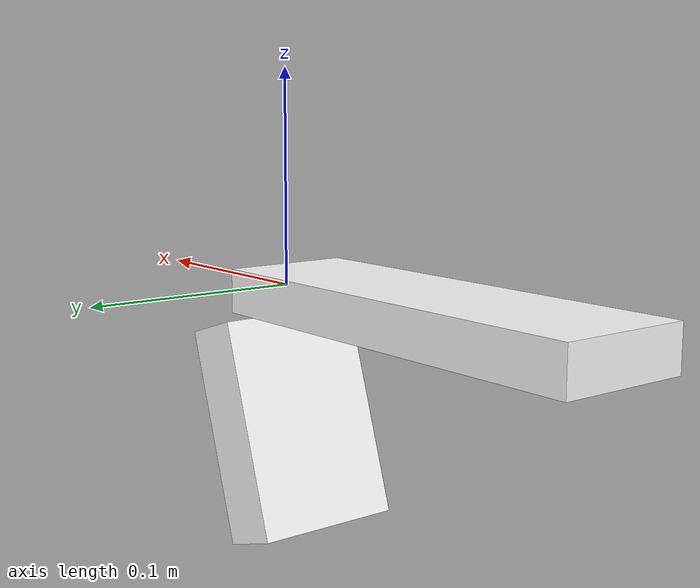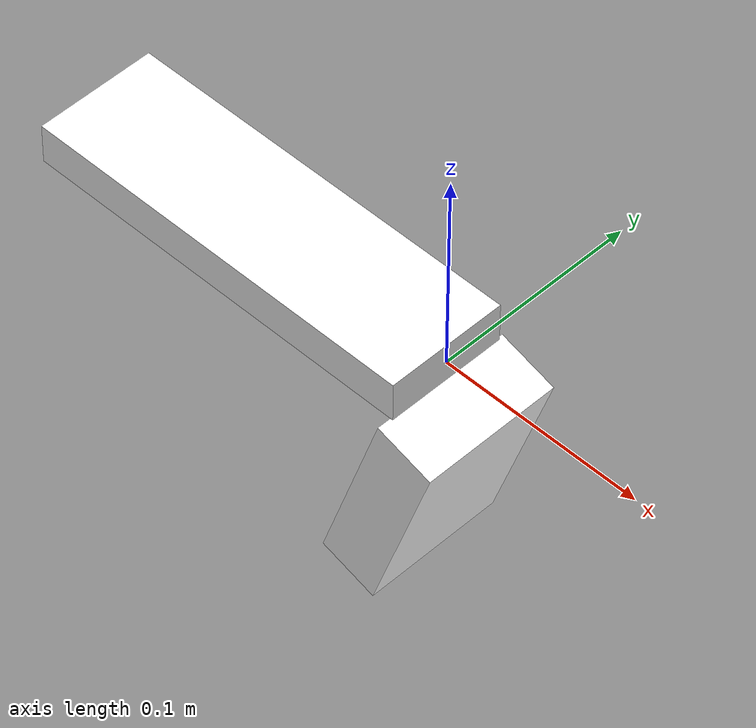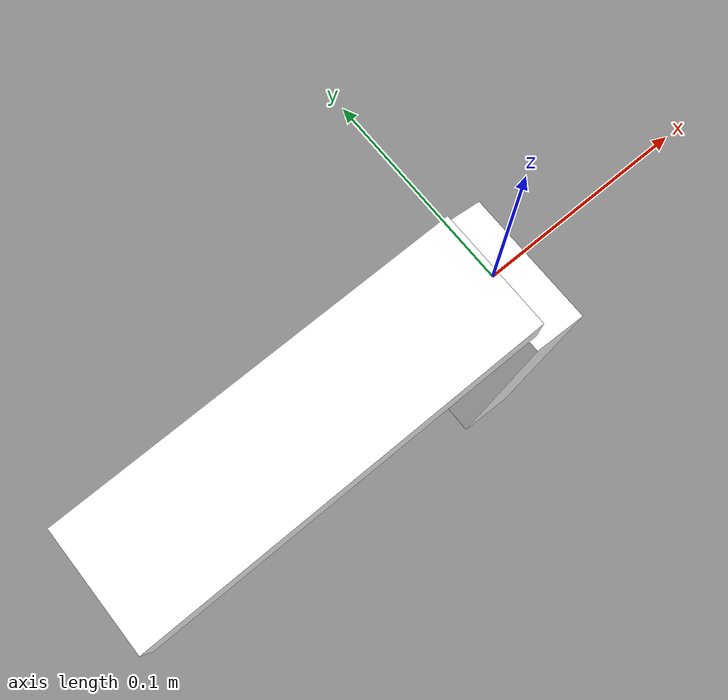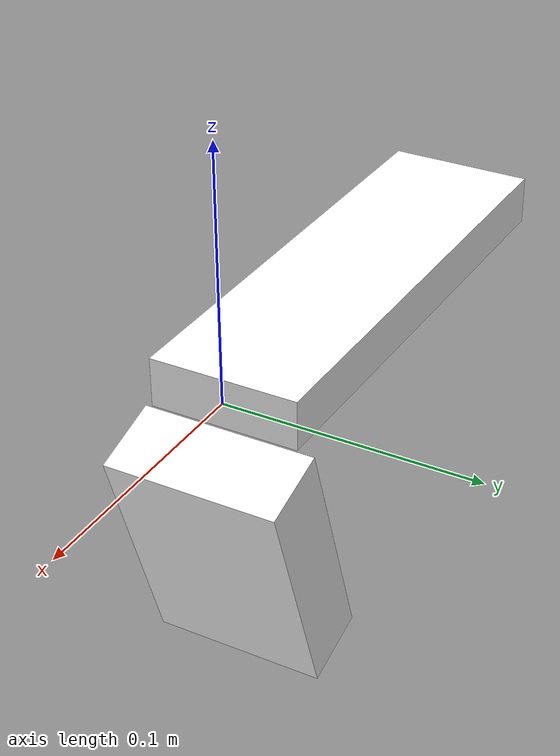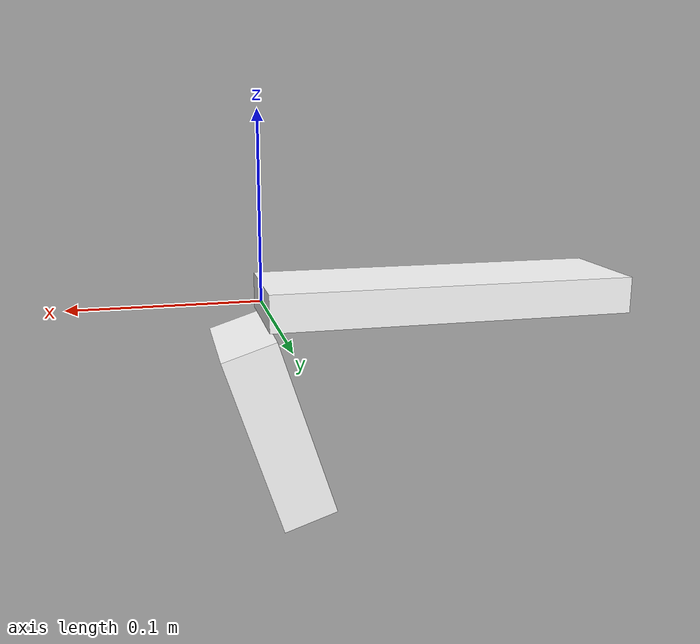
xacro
<?xml version="1.0"?>
<robot xmlns:xacro="http://www.ros.org/wiki/xacro" name="zebraRFD8500reader">

  <!-- Materials -->
  <material name="Green">
    <color rgba="0.0 0.8 0.0 1.0"/>
  </material>
  <material name="Red">
    <color rgba="0.8 0.0 0.0 1.0"/>
  </material>
  <material name="White">
    <color rgba="1.0 1.0 1.0 1.0"/>
  </material>
  <material name="Blue">
    <color rgba="0.0 0.0 0.8 1.0"/>
  </material>
  <material name="Black">
    <color rgba="0.0 0.0 0.0 1.0"/>
  </material>
  <material name="Grey">
    <color rgba="0.25 0.25 0.25 1.0"/>
  </material>
  <material name="Silver">
    <color rgba="0.38 0.38 0.38 1.0"/>
  </material>
  <material name="Sandal">
    <color rgba="0.84 0.87 0.50 1.0"/>
  </material>
  <material name="LBlue">
    <color rgba="0.18 0.30 0.58 1.0"/>
  </material>
  <material name="Yellow">
    <color rgba="1 1 0 1.0"/>
  </material>

  <!-- RFD8500 links and joints -->
  <!-- RFD8500_footprint is the root -->

  <link name="RFD8500_footprint">
    <visual>
      <origin xyz="-0.1 0 0" rpy="0 0 0"/>
      <geometry>
        <box size="0.2 0.06 0.02"/>
      </geometry>
      <material name="White"/>
    </visual>
    <collision>
      <origin xyz="0 0 0.017" rpy="0 0 0"/>
      <geometry>
        <box size="0.02 0.01 0.01"/>
      </geometry>
    </collision>
  </link>

  <link name="RFD8500_antenna">
    <visual>
      <origin xyz="-0.015 0 0" rpy="0 0 0"/>
      <geometry>
        <box size="0.03 0.07 0.10"/>
      </geometry>
      <material name="White"/>
    </visual>
    <collision>
      <origin xyz="0 0 0.017" rpy="0 0 0"/>
      <geometry>
        <box size="0.02 0.01 0.01"/>
      </geometry>
    </collision>
  </link>

  <joint name="RFD8500_antenna_footprint_joint" type="fixed">
    <origin xyz="0.01 0.0 -0.07" rpy="0 0.312 0"/>
    <parent link="RFD8500_footprint"/>
    <child link="RFD8500_antenna"/>
  </joint>

</robot>
